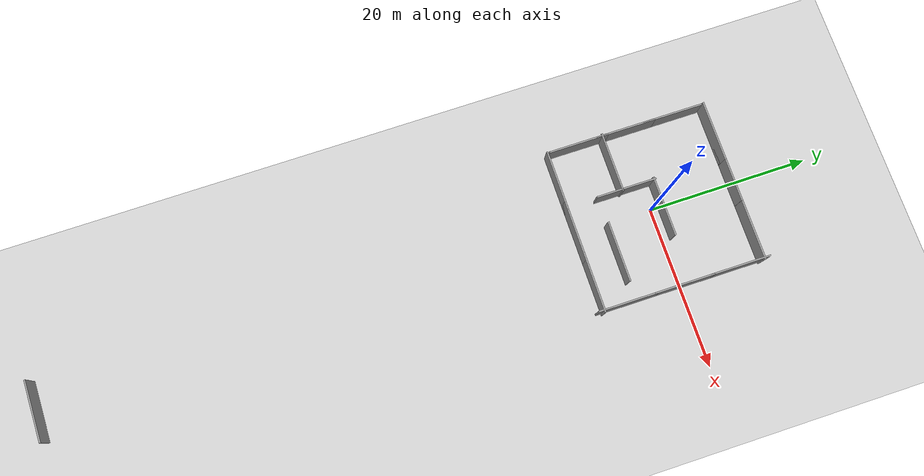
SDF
<sdf version="1.4">
 <world name="default">
  <model name="ground_plane">
   <static>1</static>
   <link name="link">
    <collision name="collision">
     <geometry><plane><normal>0 0 1</normal><size>100 100</size></plane></geometry>
     <surface><friction><ode><mu>100</mu><mu2>50</mu2></ode></friction></surface>
    </collision>
    <visual name="visual">
     <cast_shadows>0</cast_shadows>
     <geometry><plane><normal>0 0 1</normal><size>100 100</size></plane></geometry>
     <material>
      <script><uri>file://media/materials/scripts/gazebo.material</uri><name>Gazebo/Grey</name></script>
     </material>
    </visual>
    <velocity_decay><linear>0</linear><angular>0</angular></velocity_decay>
   </link>
  </model>
  <light name="sun" type="directional">
   <pose>0 0 10 0 -0 0</pose>
   <diffuse>0.8 0.8 0.8 1</diffuse>
   <specular>0.2 0.2 0.2 1</specular>
   <attenuation>
    <range>1000</range>
    <constant>0.9</constant>
    <linear>0.01</linear>
    <quadratic>0.001</quadratic>
   </attenuation>
   <direction>-0.5 0.1 -0.9</direction>
  </light>
  <physics type="ode">
   <ode>
    <solver><type>quick</type><iters>1000</iters><sor>1.3</sor></solver>
    <constraints>
     <cfm>0</cfm>
     <erp>0.2</erp>
     <contact_max_correcting_vel>100</contact_max_correcting_vel>
     <contact_surface_layer>0.001</contact_surface_layer>
    </constraints>
   </ode>
   <max_step_size>0.01</max_step_size>
   <real_time_factor>1</real_time_factor>
   <real_time_update_rate>100</real_time_update_rate>
   <gravity>0 0 -9.8</gravity>
  </physics>
  <scene><ambient>0.4 0.4 0.4 1</ambient><background>0.7 0.7 0.7 1</background><shadows>1</shadows></scene>
  <spherical_coordinates>
   <surface_model>EARTH_WGS84</surface_model>
   <latitude_deg>0</latitude_deg>
   <longitude_deg>0</longitude_deg>
   <elevation>0</elevation>
   <heading_deg>0</heading_deg>
  </spherical_coordinates>
  <model name="grey_wall">
   <static>1</static>
   <link name="link">
    <pose>0 0 1.4 0 -0 0</pose>
    <collision name="collision"><geometry><box><size>7.5 0.2 2.8</size></box></geometry></collision>
    <visual name="visual">
     <cast_shadows>0</cast_shadows>
     <geometry><box><size>7.5 0.2 2.8</size></box></geometry>
     <material>
      <script>
       <uri>model://grey_wall/materials/scripts</uri>
       <uri>model://grey_wall/materials/textures</uri>
       <name>vrc/grey_wall</name>
      </script>
     </material>
    </visual>
    <velocity_decay><linear>0</linear><angular>0</angular></velocity_decay>
   </link>
   <pose>0.5 1 0 0 -0 0</pose>
  </model>
  <model name="grey_wall_0">
   <static>1</static>
   <link name="link">
    <pose>0 0 1.4 0 -0 0</pose>
    <collision name="collision"><geometry><box><size>7.5 0.2 2.8</size></box></geometry></collision>
    <visual name="visual">
     <cast_shadows>0</cast_shadows>
     <geometry><box><size>7.5 0.2 2.8</size></box></geometry>
     <material>
      <script>
       <uri>model://grey_wall/materials/scripts</uri>
       <uri>model://grey_wall/materials/textures</uri>
       <name>vrc/grey_wall</name>
      </script>
     </material>
    </visual>
    <velocity_decay><linear>0</linear><angular>0</angular></velocity_decay>
   </link>
   <pose>6.51105 10 0 0 -0 0</pose>
  </model>
  <model name="grey_wall_1">
   <static>1</static>
   <link name="link">
    <pose>0 0 1.4 0 -0 0</pose>
    <collision name="collision"><geometry><box><size>7.5 0.2 2.8</size></box></geometry></collision>
    <visual name="visual">
     <cast_shadows>0</cast_shadows>
     <geometry><box><size>7.5 0.2 2.8</size></box></geometry>
     <material>
      <script>
       <uri>model://grey_wall/materials/scripts</uri>
       <uri>model://grey_wall/materials/textures</uri>
       <name>vrc/grey_wall</name>
      </script>
     </material>
    </visual>
    <velocity_decay><linear>0</linear><angular>0</angular></velocity_decay>
   </link>
   <pose>-1 10 0 0 -0 0</pose>
  </model>
  <model name="grey_wall_4">
   <static>1</static>
   <link name="link">
    <pose>0 0 1.4 0 -0 0</pose>
    <collision name="collision"><geometry><box><size>7.5 0.2 2.8</size></box></geometry></collision>
    <visual name="visual">
     <cast_shadows>0</cast_shadows>
     <geometry><box><size>7.5 0.2 2.8</size></box></geometry>
     <material>
      <script>
       <uri>model://grey_wall/materials/scripts</uri>
       <uri>model://grey_wall/materials/textures</uri>
       <name>vrc/grey_wall</name>
      </script>
     </material>
    </visual>
    <velocity_decay><linear>0</linear><angular>0</angular></velocity_decay>
   </link>
   <pose>-6.4087 10 0 0 -0 0</pose>
  </model>
  <model name="grey_wall_5">
   <static>1</static>
   <link name="link">
    <pose>0 0 1.4 0 -0 0</pose>
    <collision name="collision"><geometry><box><size>7.5 0.2 2.8</size></box></geometry></collision>
    <visual name="visual">
     <cast_shadows>0</cast_shadows>
     <geometry><box><size>7.5 0.2 2.8</size></box></geometry>
     <material>
      <script>
       <uri>model://grey_wall/materials/scripts</uri>
       <uri>model://grey_wall/materials/textures</uri>
       <name>vrc/grey_wall</name>
      </script>
     </material>
    </visual>
    <velocity_decay><linear>0</linear><angular>0</angular></velocity_decay>
   </link>
   <pose>-6.42424 -10 0 0 -0 0</pose>
  </model>
  <model name="grey_wall_6">
   <static>1</static>
   <link name="link">
    <pose>0 0 1.4 0 -0 0</pose>
    <collision name="collision"><geometry><box><size>7.5 0.2 2.8</size></box></geometry></collision>
    <visual name="visual">
     <cast_shadows>0</cast_shadows>
     <geometry><box><size>7.5 0.2 2.8</size></box></geometry>
     <material>
      <script>
       <uri>model://grey_wall/materials/scripts</uri>
       <uri>model://grey_wall/materials/textures</uri>
       <name>vrc/grey_wall</name>
      </script>
     </material>
    </visual>
    <velocity_decay><linear>0</linear><angular>0</angular></velocity_decay>
   </link>
   <pose>0 -10 0 0 -0 0</pose>
  </model>
  <model name="grey_wall_7">
   <static>1</static>
   <link name="link">
    <pose>0 0 1.4 0 -0 0</pose>
    <collision name="collision"><geometry><box><size>7.5 0.2 2.8</size></box></geometry></collision>
    <visual name="visual">
     <cast_shadows>0</cast_shadows>
     <geometry><box><size>7.5 0.2 2.8</size></box></geometry>
     <material>
      <script>
       <uri>model://grey_wall/materials/scripts</uri>
       <uri>model://grey_wall/materials/textures</uri>
       <name>vrc/grey_wall</name>
      </script>
     </material>
    </visual>
    <velocity_decay><linear>0</linear><angular>0</angular></velocity_decay>
   </link>
   <pose>6.59347 -10 0 0 -0 0</pose>
  </model>
  <model name="grey_wall_8">
   <static>1</static>
   <link name="link">
    <pose>0 0 1.4 0 -0 0</pose>
    <collision name="collision"><geometry><box><size>7.5 0.2 2.8</size></box></geometry></collision>
    <visual name="visual">
     <cast_shadows>0</cast_shadows>
     <geometry><box><size>7.5 0.2 2.8</size></box></geometry>
     <material>
      <script>
       <uri>model://grey_wall/materials/scripts</uri>
       <uri>model://grey_wall/materials/textures</uri>
       <name>vrc/grey_wall</name>
      </script>
     </material>
    </visual>
    <velocity_decay><linear>0</linear><angular>0</angular></velocity_decay>
   </link>
   <pose>4 -6 0 0 -0 0</pose>
  </model>
  <model name="grey_wall_9">
   <static>1</static>
   <link name="link">
    <pose>0 0 1.4 0 -0 0</pose>
    <collision name="collision"><geometry><box><size>7.5 0.2 2.8</size></box></geometry></collision>
    <visual name="visual">
     <cast_shadows>0</cast_shadows>
     <geometry><box><size>7.5 0.2 2.8</size></box></geometry>
     <material>
      <script>
       <uri>model://grey_wall/materials/scripts</uri>
       <uri>model://grey_wall/materials/textures</uri>
       <name>vrc/grey_wall</name>
      </script>
     </material>
    </visual>
    <velocity_decay><linear>0</linear><angular>0</angular></velocity_decay>
   </link>
   <pose>0.593966 -76 0 0 -0 0</pose>
  </model>
  <model name="grey_wall_10">
   <static>1</static>
   <link name="link">
    <pose>0 0 1.4 0 -0 0</pose>
    <collision name="collision"><geometry><box><size>7.5 0.2 2.8</size></box></geometry></collision>
    <visual name="visual">
     <cast_shadows>0</cast_shadows>
     <geometry><box><size>7.5 0.2 2.8</size></box></geometry>
     <material>
      <script>
       <uri>model://grey_wall/materials/scripts</uri>
       <uri>model://grey_wall/materials/textures</uri>
       <name>vrc/grey_wall</name>
      </script>
     </material>
    </visual>
    <velocity_decay><linear>0</linear><angular>0</angular></velocity_decay>
   </link>
   <pose>-6.51105 -3 0 0 -0 0</pose>
  </model>
  <model name="grey_wall_11">
   <static>1</static>
   <link name="link">
    <pose>0 0 1.4 0 -0 0</pose>
    <collision name="collision"><geometry><box><size>7.5 0.2 2.8</size></box></geometry></collision>
    <visual name="visual">
     <cast_shadows>0</cast_shadows>
     <geometry><box><size>7.5 0.2 2.8</size></box></geometry>
     <material>
      <script>
       <uri>model://grey_wall/materials/scripts</uri>
       <uri>model://grey_wall/materials/textures</uri>
       <name>vrc/grey_wall</name>
      </script>
     </material>
    </visual>
    <velocity_decay><linear>0</linear><angular>0</angular></velocity_decay>
   </link>
   <pose>-3 -2.5 0 -0 0 1.57</pose>
  </model>
  <model name="grey_wall_12">
   <static>1</static>
   <link name="link">
    <pose>0 0 1.4 0 -0 0</pose>
    <collision name="collision"><geometry><box><size>7.5 0.2 2.8</size></box></geometry></collision>
    <visual name="visual">
     <cast_shadows>0</cast_shadows>
     <geometry><box><size>7.5 0.2 2.8</size></box></geometry>
     <material>
      <script>
       <uri>model://grey_wall/materials/scripts</uri>
       <uri>model://grey_wall/materials/textures</uri>
       <name>vrc/grey_wall</name>
      </script>
     </material>
    </visual>
    <velocity_decay><linear>0</linear><angular>0</angular></velocity_decay>
   </link>
   <pose>10 7 0 -0 0 1.57</pose>
  </model>
  <model name="grey_wall_13">
   <static>1</static>
   <link name="link">
    <pose>0 0 1.4 0 -0 0</pose>
    <collision name="collision"><geometry><box><size>7.5 0.2 2.8</size></box></geometry></collision>
    <visual name="visual">
     <cast_shadows>0</cast_shadows>
     <geometry><box><size>7.5 0.2 2.8</size></box></geometry>
     <material>
      <script>
       <uri>model://grey_wall/materials/scripts</uri>
       <uri>model://grey_wall/materials/textures</uri>
       <name>vrc/grey_wall</name>
      </script>
     </material>
    </visual>
    <velocity_decay><linear>0</linear><angular>0</angular></velocity_decay>
   </link>
   <pose>10 0 0 -0 0 1.57</pose>
  </model>
  <model name="grey_wall_14">
   <static>1</static>
   <link name="link">
    <pose>0 0 1.4 0 -0 0</pose>
    <collision name="collision"><geometry><box><size>7.5 0.2 2.8</size></box></geometry></collision>
    <visual name="visual">
     <cast_shadows>0</cast_shadows>
     <geometry><box><size>7.5 0.2 2.8</size></box></geometry>
     <material>
      <script>
       <uri>model://grey_wall/materials/scripts</uri>
       <uri>model://grey_wall/materials/textures</uri>
       <name>vrc/grey_wall</name>
      </script>
     </material>
    </visual>
    <velocity_decay><linear>0</linear><angular>0</angular></velocity_decay>
   </link>
   <pose>10 -7 0  -0 0 1.57</pose>
  </model>
  <model name="grey_wall_15">
   <static>1</static>
   <link name="link">
    <pose>0 0 1.4 0 -0 0</pose>
    <collision name="collision"><geometry><box><size>7.5 0.2 2.8</size></box></geometry></collision>
    <visual name="visual">
     <cast_shadows>0</cast_shadows>
     <geometry><box><size>7.5 0.2 2.8</size></box></geometry>
     <material>
      <script>
       <uri>model://grey_wall/materials/scripts</uri>
       <uri>model://grey_wall/materials/textures</uri>
       <name>vrc/grey_wall</name>
      </script>
     </material>
    </visual>
    <velocity_decay><linear>0</linear><angular>0</angular></velocity_decay>
   </link>
   <pose>-10 6 0 -0 0 1.57</pose>
  </model>
  <model name="grey_wall_16">
   <static>1</static>
   <link name="link">
    <pose>0 0 1.4 0 -0 0</pose>
    <collision name="collision"><geometry><box><size>7.5 0.2 2.8</size></box></geometry></collision>
    <visual name="visual">
     <cast_shadows>0</cast_shadows>
     <geometry><box><size>7.5 0.2 2.8</size></box></geometry>
     <material>
      <script>
       <uri>model://grey_wall/materials/scripts</uri>
       <uri>model://grey_wall/materials/textures</uri>
       <name>vrc/grey_wall</name>
      </script>
     </material>
    </visual>
    <velocity_decay><linear>0</linear><angular>0</angular></velocity_decay>
   </link>
   <pose>-10 0 0 -0 0 1.57</pose>
  </model>
  <model name="grey_wall_17">
   <static>1</static>
   <link name="link">
    <pose>0 0 1.4 0 -0 0</pose>
    <collision name="collision"><geometry><box><size>7.5 0.2 2.8</size></box></geometry></collision>
    <visual name="visual">
     <cast_shadows>0</cast_shadows>
     <geometry><box><size>7.5 0.2 2.8</size></box></geometry>
     <material>
      <script>
       <uri>model://grey_wall/materials/scripts</uri>
       <uri>model://grey_wall/materials/textures</uri>
       <name>vrc/grey_wall</name>
      </script>
     </material>
    </visual>
    <velocity_decay><linear>0</linear><angular>0</angular></velocity_decay>
   </link>
   <pose>-10 -6 0 -0 0 1.57</pose>
  </model>
 </world>
</sdf>
